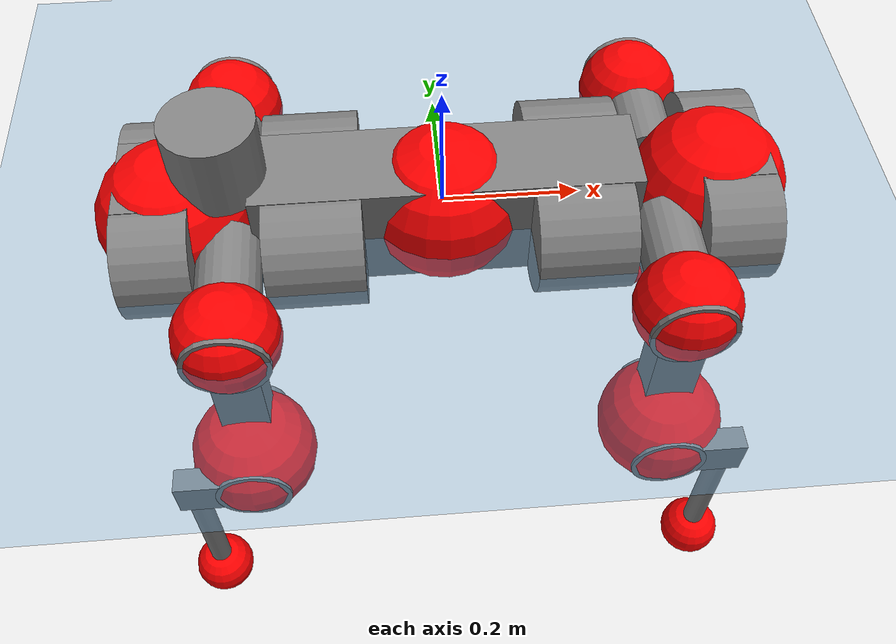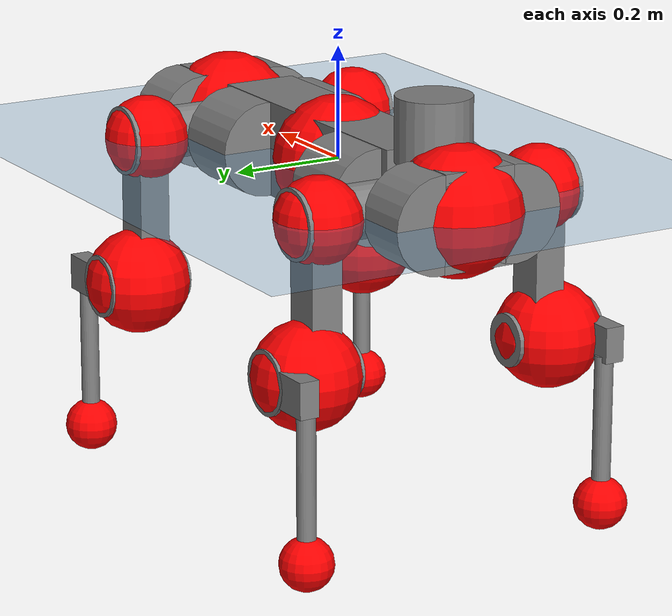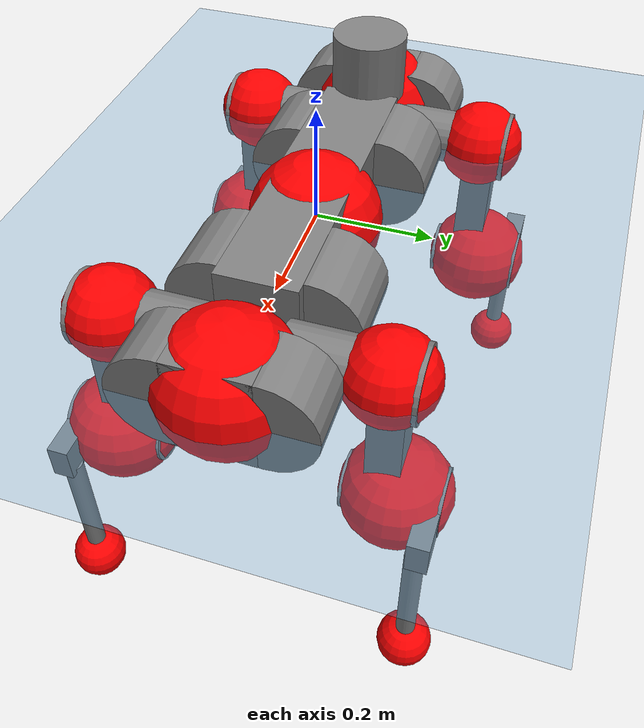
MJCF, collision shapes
<mujoco model="anymal_c">
  <compiler angle="radian" assetdir="assets" balanceinertia="true" inertiafromgeom="false"/>

  <option timestep="0.005" density="1.2" viscosity="2e-05"/>

  <size nkey="1"/>

  <visual>
    <quality shadowsize="8192"/>
    <map shadowclip="0.5"/>
  </visual>

  <default>
    <default class="/">
      <material specular="0" shininess="0.25"/>
      <geom contype="0" conaffinity="0" group="1" solref="-1000 -80"/>
      <site size="0.01 0.005 0.005" group="5"/>
      <general forcelimited="true" forcerange="-80 80" biastype="affine" gainprm="80" biasprm="0 -80 -2"/>
      <default class="anymal_c">
        <joint armature="0.01" damping="0.01" frictionloss="0.1"/>
        <default class="visual">
          <geom type="mesh" group="2"/>
          <default class="visual_zflip"/>
        </default>
        <default class="collision">
          <geom type="cylinder" group="3"/>
          <default class="foot">
            <geom size="0.03 0 0" type="sphere" condim="6" priority="1" friction="0.8 0.02 0.01" solimp="0.015 1 0.03"/>
          </default>
        </default>
      </default>
      <default class="reward_collision_sphere">
        <geom group="5" rgba="1 0 0 1"/>
      </default>
    </default>
  </default>

  <asset>
    <texture type="skybox" colorspace="auto" name="//unnamed_texture_0" builtin="gradient" rgb1="0.95 0.95 0.95" rgb2="0.95 0.95 0.95" width="100" height="600"/>
    <texture type="2d" colorspace="auto" name="texplane" builtin="checker" rgb1="0.345 0.575 0.748" rgb2="0.345 0.575 0.748" markrgb="1 1 1" width="512" height="512"/>
    <texture type="2d" colorspace="linear" name="base" file="base.png"/>
    <texture type="2d" colorspace="linear" name="top_shell" file="top_shell.png"/>
    <texture type="2d" colorspace="linear" name="bottom_shell" file="bottom_shell.png"/>
    <texture type="2d" colorspace="linear" name="remote" file="remote.png"/>
    <texture type="2d" colorspace="linear" name="hatch" file="hatch.png"/>
    <texture type="2d" colorspace="linear" name="handle" file="handle.png"/>
    <texture type="2d" colorspace="linear" name="face" file="face.png"/>
    <texture type="2d" colorspace="linear" name="battery" file="battery.png"/>
    <texture type="2d" colorspace="linear" name="lidar_cage" file="lidar_cage.png"/>
    <texture type="2d" colorspace="linear" name="depth_camera" file="depth_camera.png"/>
    <texture type="2d" colorspace="linear" name="wide_angle_camera" file="wide_angle_camera.png"/>
    <texture type="2d" colorspace="linear" name="lidar" file="lidar.png"/>
    <texture type="2d" colorspace="linear" name="drive" file="drive.png"/>
    <texture type="2d" colorspace="linear" name="hip_l" file="hip_l.png"/>
    <texture type="2d" colorspace="linear" name="shank_l" file="shank_l.png"/>
    <texture type="2d" colorspace="linear" name="foot" file="foot.png"/>
    <texture type="2d" colorspace="linear" name="thigh" file="thigh.png"/>
    <texture type="2d" colorspace="linear" name="shank_r" file="shank_r.png"/>
    <texture type="2d" colorspace="linear" name="hip_r" file="hip_r.png"/>
    <material name="MatPlane" class="/" texture="texplane" texuniform="true" texrepeat="2 2" specular="0.9" shininess="0.5"/>
    <material name="black_plastic" class="/" rgba="0.007 0.007 0.007 1"/>
    <material name="green" class="/" rgba="0.052 0.178 0.033 1"/>
    <material name="red" class="/" rgba="0.178 0.006 0.005 1"/>
    <material name="yellow" class="/" rgba="0.178 0.119 0.006 1"/>
    <material name="lwl" class="/" rgba="0.8 0.8 0.8 1"/>
    <material name="base" class="/" texture="base"/>
    <material name="top_shell" class="/" texture="top_shell"/>
    <material name="bottom_shell" class="/" texture="bottom_shell"/>
    <material name="hip_l" class="/" texture="hip_l"/>
    <material name="thigh" class="/" texture="thigh"/>
    <material name="shank_l" class="/" texture="shank_l"/>
    <material name="foot" class="/" texture="foot"/>
    <material name="hip_r" class="/" texture="hip_r"/>
    <material name="shank" class="/" texture="shank_r"/>
    <material name="hatch" class="/" texture="hatch"/>
    <material name="remote" class="/" texture="remote"/>
    <material name="handle" class="/" texture="handle"/>
    <material name="face" class="/" texture="face"/>
    <material name="depth_camera" class="/" texture="depth_camera"/>
    <material name="wide_angle_camera" class="/" texture="wide_angle_camera"/>
    <material name="battery" class="/" texture="battery"/>
    <material name="lidar_cage" class="/" texture="lidar_cage"/>
    <material name="lidar" class="/" texture="lidar"/>
    <material name="drive" class="/" texture="drive"/>
    <mesh name="base_0" class="/" file="base_0.obj"/>
    <mesh name="base_1" class="/" file="base_1.obj"/>
    <mesh name="base_2" class="/" file="base_2.obj"/>
    <mesh name="base_3" class="/" file="base_3.obj"/>
    <mesh name="base_4" class="/" file="base_4.obj"/>
    <mesh name="base_5" class="/" file="base_5.obj"/>
    <mesh name="top_shell" class="/" file="top_shell.obj"/>
    <mesh name="bottom_shell" class="/" file="bottom_shell.obj"/>
    <mesh name="remote" class="/" file="remote.obj"/>
    <mesh name="handle" class="/" file="handle.obj"/>
    <mesh name="face" class="/" file="face.obj"/>
    <mesh name="wide_angle_camera" class="/" file="wide_angle_camera.obj"/>
    <mesh name="depth_camera" class="/" file="depth_camera.obj"/>
    <mesh name="battery" class="/" file="battery.obj"/>
    <mesh name="lidar_cage" class="/" file="lidar_cage.obj"/>
    <mesh name="lidar" class="/" file="lidar.obj"/>
    <mesh name="drive" class="/" file="drive.obj"/>
    <mesh name="hip_l" class="/" file="hip_l.obj"/>
    <mesh name="thigh" class="/" file="thigh.obj"/>
    <mesh name="shank_l" class="/" file="shank_l.obj"/>
    <mesh name="foot" class="/" file="foot.obj"/>
    <mesh name="hip_r" class="/" file="hip_r.obj"/>
    <mesh name="hatch" class="/" file="hatch.obj"/>
    <mesh name="shank_r" class="/" file="shank_r.obj"/>
  </asset>

  <worldbody>
    <geom name="floor" class="/" size="100 100 0.125" type="plane" group="0" material="MatPlane"/>
    <light name="toplight_shadow" class="/" pos="0 0 5" dir="0.0990148 0.0990148 -0.990148" type="directional" ambient="0.04 0.04 0.04" diffuse="0.55 0.55 0.55" specular="0.12 0.12 0.12"/>
    <light name="toplight_fill" class="/" pos="0 0 5" dir="0.0990148 0.0990148 -0.990148" type="directional" castshadow="false" ambient="0.04 0.04 0.04" diffuse="0.3 0.3 0.3" specular="0.08 0.08 0.08"/>
    <body name="trunk" childclass="anymal_c" pos="0.00318612 -0.00025245 -0.00240098" quat="1 0.000270333 -3.89134e-05 0.000389678">
      <inertial pos="0.00599187 -0.00164171 0.043701" quat="0.508033 0.500375 0.490915 0.50053" mass="16.9755" diaginertia="0.302461 0.827271 0.146975"/>
      <joint name="//unnamed_joint_0" type="free" armature="0" damping="0" frictionloss="0"/>
      <geom name="//unnamed_geom_1" class="visual" material="green" mesh="base_0"/>
      <geom name="//unnamed_geom_2" class="visual" material="yellow" mesh="base_1"/>
      <geom name="//unnamed_geom_3" class="visual" material="red" mesh="base_2"/>
      <geom name="//unnamed_geom_4" class="visual" material="black_plastic" mesh="base_3"/>
      <geom name="//unnamed_geom_5" class="visual" material="lwl" mesh="base_4"/>
      <geom name="//unnamed_geom_6" class="visual" material="base" mesh="base_5"/>
      <geom name="trunk_1" class="collision" size="0.275589 0.0665214 0.0855276" type="box"/>
      <geom name="trunk_2" class="collision" size="0.0855276 0.0688972" pos="0.188431 0.0739032 0" quat="0.707107 0 0.707107 0"/>
      <geom name="trunk_3" class="collision" size="0.0855276 0.0688972" pos="-0.188431 0.0739032 0" quat="0.707107 0 0.707107 0"/>
      <geom name="trunk_4" class="collision" size="0.0855276 0.0688972" pos="0.188431 -0.0739032 0" quat="0.707107 0 0.707107 0"/>
      <geom name="trunk_5" class="collision" size="0.0855276 0.0688972" pos="-0.188431 -0.0739032 0" quat="0.707107 0 0.707107 0"/>
      <geom name="//unnamed_geom_12" class="visual" material="top_shell" mesh="top_shell"/>
      <geom name="//unnamed_geom_13" class="visual" material="bottom_shell" mesh="bottom_shell"/>
      <geom name="//unnamed_geom_14" class="visual" material="remote" mesh="remote"/>
      <geom name="//unnamed_geom_15" class="visual" material="handle" mesh="handle"/>
      <geom name="//unnamed_geom_16" class="visual" pos="0.359102 0 0" quat="1 0 0 0" material="face" mesh="face"/>
      <geom name="trunk_6" class="collision" size="0.0522668 0.0665214 0.0855276" pos="0.406751 0 0" type="box"/>
      <geom name="//unnamed_geom_18" class="collision" size="0.0855276 0.0522668" pos="0.406751 0.0739032 0" quat="0.707107 0 0.707107 0"/>
      <geom name="//unnamed_geom_19" class="collision" size="0.0855276 0.0522668" pos="0.406751 -0.0739032 0" quat="0.707107 0 0.707107 0"/>
      <geom name="//unnamed_geom_20" class="visual" pos="0.399953 0 -0.0275959" quat="0.965926 0 0.258819 0" material="depth_camera" mesh="depth_camera"/>
      <geom name="//unnamed_geom_21" class="visual" pos="0.444438 0 0.0139043" material="wide_angle_camera" mesh="wide_angle_camera"/>
      <geom name="//unnamed_geom_22" class="visual_zflip" pos="-0.359102 0 0" quat="0 0 0 1" material="face" mesh="face"/>
      <geom name="trunk_7" class="collision" size="0.0522668 0.0665214 0.0855276" pos="-0.406751 0 0" quat="0 0 0 1" type="box"/>
      <geom name="//unnamed_geom_24" class="collision" size="0.0855276 0.0522668" pos="-0.406751 -0.0739032 0" quat="0 -0.707107 0 0.707107"/>
      <geom name="//unnamed_geom_25" class="collision" size="0.0855276 0.0522668" pos="-0.406751 0.0739032 0" quat="0 -0.707107 0 0.707107"/>
      <geom name="//unnamed_geom_26" class="visual" pos="-0.399953 0 -0.0275959" quat="0 -0.258819 0 0.965926" material="depth_camera" mesh="depth_camera"/>
      <geom name="//unnamed_geom_27" class="visual_zflip" pos="-0.444438 0 0.0139043" quat="0 0 0 1" material="wide_angle_camera" mesh="wide_angle_camera"/>
      <geom name="//unnamed_geom_28" class="visual" material="battery" mesh="battery"/>
      <geom name="//unnamed_geom_29" class="visual" pos="0 0.0832115 0.0265072" quat="0.683013 -0.183013 0.183013 0.683013" material="depth_camera" mesh="depth_camera"/>
      <geom name="//unnamed_geom_30" class="visual" pos="0 -0.0832115 0.0265072" quat="0.683013 0.183013 0.183013 -0.683013" material="depth_camera" mesh="depth_camera"/>
      <geom name="//unnamed_geom_31" class="visual" pos="-0.315351 0 0.0682674" quat="1 0 0 0" material="lidar_cage" mesh="lidar_cage"/>
      <geom name="trunk_8" class="collision" size="0.0665214 0.0570184" pos="-0.315351 0 0.123996"/>
      <geom name="//unnamed_geom_33" class="visual" pos="-0.315351 7.44141e-05 0.132077" quat="0.707107 0 0 -0.707107" material="lidar" mesh="lidar"/>
      <geom name="//unnamed_geom_34" class="visual" pos="0.259818 0.109754 2.18992e-09" quat="0.258819 0.965926 0 0" material="drive" mesh="drive"/>
      <geom name="//unnamed_geom_35" class="visual" pos="0.259818 -0.109754 -2.18992e-09" quat="0.258819 -0.965926 0 0" material="drive" mesh="drive"/>
      <geom name="//unnamed_geom_36" class="visual" pos="-0.259818 0.109754 -2.18992e-09" quat="0 0 0.965926 -0.258819" material="drive" mesh="drive"/>
      <geom name="//unnamed_geom_37" class="visual" pos="-0.259818 -0.109754 2.18992e-09" quat="0 0 -0.965926 -0.258819" material="drive" mesh="drive"/>
      <geom name="//unnamed_geom_38" class="visual" pos="0.100497 0 0.067803" quat="1 0 0 0" material="hatch" mesh="hatch"/>
      <geom name="//unnamed_geom_39" class="reward_collision_sphere" size="0.114037"/>
      <geom name="//unnamed_geom_40" class="reward_collision_sphere" size="0.114037" pos="0.389858 0 0"/>
      <geom name="//unnamed_geom_41" class="reward_collision_sphere" size="0.114037" pos="-0.389858 0 0"/>
      <site name="imu" pos="0.213426 0.0212695 0.0301344" size="0.00950306"/>
      <camera name="track" pos="0 -2.11152 0" quat="0.707107 0.707107 0 0" mode="trackcom"/>
      <camera name="ego_camera" pos="0.389858 0 -0.0371524" quat="-0.5 -0.5 0.5 0.5"/>
      <body name="LF_HIP" pos="0.258971 0.109044 0.00262052" quat="0.257525 0.966271 0.000513108 -0.000861673">
        <inertial pos="0.0531006 -0.0176259 -0.00917542" quat="-0.127143 0.709327 -0.135433 0.679962" mass="2.2861" diaginertia="0.00272707 0.00651742 0.00226756"/>
        <joint name="LF_HAA" pos="0 0 0" axis="0.999888 -0.0104514 -0.0107043" range="-0.727648 0.522844" armature="0.00931039" damping="0.00296728" frictionloss="0.105803"/>
        <geom name="//unnamed_geom_42" class="visual" pos="0 0.000128823 -2.11591e-05" quat="0.258819 -0.965926 0 0" material="hip_l" mesh="hip_l"/>
        <geom name="//unnamed_geom_43" class="visual" pos="0.0518944 -0.0653298 -0.0367792" quat="0.183013 -0.683013 0.683013 0.183013" material="drive" mesh="drive"/>
        <geom name="//unnamed_geom_44" class="collision" size="0.0475153 0.0665214" pos="0.0518944 -0.0126267 -0.00641342" quat="-0.353553 -0.612372 0.612372 -0.353553"/>
        <body name="LF_THIGH" pos="0.0513251 -0.0743944 -0.0379051" quat="0.183095 -0.683059 0.682958 0.182962">
          <inertial pos="0.0235829 0.000322452 -0.23028" quat="0.993105 -0.00399376 -0.0791874 0.0863452" mass="2.52538" diaginertia="0.0144312 0.0400499 0.00277604"/>
          <joint name="LF_HFE" pos="0 0 0" axis="0.99996 -0.00300514 -0.00843374" range="-3.12084 3.13067" armature="0.00926715" damping="0.022619" frictionloss="0.103947"/>
          <geom name="//unnamed_geom_45" class="visual" pos="-0.00376851 -5.9383e-06 0" quat="0.707107 0 0 -0.707107" material="thigh" mesh="thigh"/>
          <geom name="//unnamed_geom_46" class="collision" size="0.0617699 0.0380123" pos="0.034654 0 0" quat="0.5 0.5 -0.5 -0.5"/>
          <geom name="//unnamed_geom_47" class="collision" size="0.0356365 0.0285092 0.134292" pos="0.0259905 0 -0.131254" quat="0.707107 0 0 -0.707107" type="box"/>
          <geom name="//unnamed_geom_48" class="visual" pos="0.0868949 0 -0.264711" quat="1 0 0 0" material="drive" mesh="drive"/>
          <geom name="//unnamed_geom_49" class="collision" size="0.0475153 0.0665214" pos="0.0262504 0 -0.264711" quat="0.707107 0 0.707107 0"/>
          <geom name="//unnamed_geom_50" class="reward_collision_sphere" size="0.0760245" pos="0.0216588 0 0"/>
          <body name="LF_SHANK" pos="0.0877976 0.00150123 -0.264233" quat="1 -7.79784e-05 0.000240757 0.000225988">
            <inertial pos="0.00593323 -0.0629879 -0.074682" quat="0.992256 -0.119844 -0.00653754 -0.0319825" mass="0.520224" diaginertia="0.00479161 0.012365 0.00076634"/>
            <joint name="LF_KFE" pos="0 0 0" axis="0.999899 0.00928818 0.0107504" range="-3.15697 3.16646" armature="0.00870431" damping="0.00983954" frictionloss="0.0868907"/>
            <geom name="//unnamed_geom_51" class="visual" pos="-0.00122883 -0.00655218 0" quat="0.707107 0 0 -0.707107" material="shank_l" mesh="shank_l"/>
            <geom name="LF_kfe_act" class="collision" size="0.0570184 0.0190061" pos="0.017327 0 0" quat="0.5 0.5 -0.5 -0.5"/>
            <geom name="//unnamed_geom_53" class="collision" size="0.0546417 0.0320728 0.0180558" pos="0.017327 -0.0607052 0" quat="0.5 0.5 -0.5 -0.5" type="box"/>
            <geom name="//unnamed_geom_54" class="visual" pos="0.0113062 -0.0949656 -0.31391" quat="0.382683 0 0 -0.92388" material="foot" mesh="foot"/>
            <geom name="LF_calf" class="collision" size="0.0166304 0.134233" pos="0.0113059 -0.0928541 -0.156955" quat="0.707107 0 0 -0.707107"/>
            <geom name="LF_foot" class="foot" size="0.0337891" pos="0.0113059 -0.0928541 -0.293011" quat="0.707107 0 0 -0.707107"/>
            <geom name="//unnamed_geom_57" class="reward_collision_sphere" size="0.0950306" pos="-0.0433175 0 0"/>
            <geom name="//unnamed_geom_58" class="reward_collision_sphere" size="0.0475153" pos="0.0113059 -0.0928541 -0.293011"/>
            <site name="LF_foot" class="foot" pos="0.0113059 -0.0928541 -0.293011" quat="0.707107 0 0 -0.707107" size="0.00950306"/>
          </body>
        </body>
      </body>
      <body name="RF_HIP" pos="0.260527 -0.111712 0.000219767" quat="0.258893 -0.965905 0.00105411 6.25959e-05">
        <inertial pos="0.0484299 0.0192702 -0.00816455" quat="0.135282 0.679226 0.12806 0.709896" mass="2.24501" diaginertia="0.00280274 0.00628505 0.00225844"/>
        <joint name="RF_HAA" pos="0 0 0" axis="0.999999 -0.00100101 0.000353738" range="-0.463938 0.707552" armature="0.0111586" damping="0.0101137" frictionloss="0.0790508"/>
        <geom name="//unnamed_geom_59" class="visual" pos="0 -0.000128822 -2.11591e-05" quat="0.258819 0.965926 0 0" material="hip_r" mesh="hip_r"/>
        <geom name="//unnamed_geom_60" class="visual" pos="0.0518944 0.0653298 -0.0367792" quat="0.183013 0.683013 0.683013 -0.183013" material="drive" mesh="drive"/>
        <geom name="//unnamed_geom_61" class="collision" size="0.0475153 0.0665214" pos="0.0518944 0.0126267 -0.00641342" quat="-0.353553 0.612372 0.612372 0.353553"/>
        <body name="RF_THIGH" pos="0.0540734 0.0749888 -0.0410358" quat="0.183004 0.683863 0.682411 -0.182087">
          <inertial pos="0.0266927 0.00380453 -0.230703" quat="0.992445 -0.00452649 -0.0883413 0.085018" mass="2.68482" diaginertia="0.0141478 0.0369393 0.00283246"/>
          <joint name="RF_HFE" pos="0 0 0" axis="0.999882 -0.0150539 -0.0029489" stiffness="0.00568614" range="-3.19557 3.09194" armature="0.00944677" damping="0.0078106" frictionloss="0.105724"/>
          <geom name="//unnamed_geom_62" class="visual" pos="-0.00376851 -5.9383e-06 0" quat="0.707107 0 0 -0.707107" material="thigh" mesh="thigh"/>
          <geom name="//unnamed_geom_63" class="collision" size="0.0617699 0.0380123" pos="0.034654 0 0" quat="0.5 0.5 0.5 0.5"/>
          <geom name="//unnamed_geom_64" class="collision" size="0.0356365 0.0285092 0.134292" pos="0.0259905 0 -0.131254" quat="0.707107 0 0 0.707107" type="box"/>
          <geom name="//unnamed_geom_65" class="visual" pos="0.0868949 0 -0.264711" quat="1 0 0 0" material="drive" mesh="drive"/>
          <geom name="//unnamed_geom_66" class="collision" size="0.0475153 0.0665214" pos="0.0262504 0 -0.264711" quat="0.707107 0 0.707107 0"/>
          <geom name="//unnamed_geom_67" class="reward_collision_sphere" size="0.0760245" pos="0.0216588 0 0"/>
          <body name="RF_SHANK" pos="0.0877127 0.000481728 -0.265641" quat="1 -8.55212e-05 9.20134e-06 -0.000400039">
            <inertial pos="0.00655094 0.0646912 -0.0772753" quat="0.992691 0.119333 -0.00299126 0.0177351" mass="0.513859" diaginertia="0.00479997 0.0119445 0.000762997"/>
            <joint name="RF_KFE" pos="0 0 0" axis="0.999982 -0.00525235 0.00277149" range="-3.15784 3.10991" armature="0.00974575" damping="0.015244" frictionloss="0.107066"/>
            <geom name="//unnamed_geom_68" class="visual" pos="-0.00122882 0.00655217 0" quat="0.707107 0 0 0.707107" material="shank" mesh="shank_r"/>
            <geom name="RF_kfe_act" class="collision" size="0.0570184 0.0190061" pos="0.017327 0 0" quat="0.5 0.5 0.5 0.5"/>
            <geom name="//unnamed_geom_70" class="collision" size="0.0546417 0.0320728 0.0180558" pos="0.017327 0.0607052 0" quat="0.5 0.5 0.5 0.5" type="box"/>
            <geom name="//unnamed_geom_71" class="visual" pos="0.0113056 0.0949656 -0.31391" quat="0.382683 0 0 0.92388" material="foot" mesh="foot"/>
            <geom name="RF_calf" class="collision" size="0.0166304 0.134233" pos="0.0113059 0.0928541 -0.156955" quat="0.707107 0 0 0.707107"/>
            <geom name="RF_foot" class="foot" size="0.0302354" pos="0.0113059 0.0928541 -0.293011" quat="0.707107 0 0 0.707107"/>
            <geom name="//unnamed_geom_74" class="reward_collision_sphere" size="0.0950306" pos="-0.0433175 0 0"/>
            <geom name="//unnamed_geom_75" class="reward_collision_sphere" size="0.0475153" pos="0.0113059 0.0928541 -0.293011"/>
            <site name="RF_foot" class="foot" pos="0.0113059 0.0928541 -0.293011" quat="0.707107 0 0 0.707107" size="0.00950306"/>
          </body>
        </body>
      </body>
      <body name="LH_HIP" pos="-0.260529 0.112976 0.0013261" quat="-0.0021013 -0.00103533 0.965819 -0.259206">
        <inertial pos="0.0459381 0.0134166 -0.00673886" quat="0.134155 0.679133 0.128404 0.710136" mass="2.46214" diaginertia="0.0028567 0.00645537 0.00220524"/>
        <joint name="LH_HAA" pos="0 0 0" axis="0.99996 0.00512698 0.00735112" stiffness="0.00060687" range="-0.539563 0.758814" armature="0.00955177" damping="0.0105124" frictionloss="0.10661"/>
        <geom name="//unnamed_geom_76" class="visual" pos="0 -0.000128822 -2.11591e-05" quat="-0.258819 -0.965926 0 0" material="hip_r" mesh="hip_r"/>
        <geom name="//unnamed_geom_77" class="visual" pos="0.0518944 0.0653298 -0.0367792" quat="0.183013 0.683013 0.683013 -0.183013" material="drive" mesh="drive"/>
        <geom name="//unnamed_geom_78" class="collision" size="0.0475153 0.0665214" pos="0.0518944 0.0126267 -0.00641342" quat="-0.353553 0.612372 0.612372 0.353553"/>
        <body name="LH_THIGH" pos="0.0543713 0.0789532 -0.0392786" quat="0.183323 0.68382 0.682372 -0.182077">
          <inertial pos="0.0274316 -0.00220636 -0.23005" quat="0.992538 0.0035148 -0.0829363 0.0893206" mass="2.68603" diaginertia="0.0152858 0.0396367 0.00299384"/>
          <joint name="LH_HFE" pos="0 0 0" axis="0.999998 -0.00182279 0.000296774" range="-3.18076 3.1569" armature="0.00926124" damping="0.0221372" frictionloss="0.0830583"/>
          <geom name="//unnamed_geom_79" class="visual" pos="-0.00376851 -5.9383e-06 0" quat="0.707107 0 0 -0.707107" material="thigh" mesh="thigh"/>
          <geom name="//unnamed_geom_80" class="collision" size="0.0617699 0.0380123" pos="0.034654 0 0" quat="0.5 0.5 -0.5 -0.5"/>
          <geom name="//unnamed_geom_81" class="collision" size="0.0356365 0.0285092 0.134292" pos="0.0259905 0 -0.131254" quat="0.707107 0 0 -0.707107" type="box"/>
          <geom name="//unnamed_geom_82" class="visual" pos="0.0868949 0 -0.264711" quat="1 0 0 0" material="drive" mesh="drive"/>
          <geom name="//unnamed_geom_83" class="collision" size="0.0475153 0.0665214" pos="0.0262504 0 -0.264711" quat="0.707107 0 0.707107 0"/>
          <geom name="//unnamed_geom_84" class="reward_collision_sphere" size="0.0760245" pos="0.0216588 0 0"/>
          <body name="LH_SHANK" pos="0.0898388 0.000421197 -0.263257" quat="1 -0.000332233 -0.000375271 4.39051e-05">
            <inertial pos="0.005024 0.0647291 -0.0735392" quat="0.992915 0.116043 -0.000942803 0.0255541" mass="0.503977" diaginertia="0.00495111 0.0119552 0.000762574"/>
            <joint name="LH_KFE" pos="0 0 0" axis="0.999955 -0.00932595 -0.00199059" range="-3.19722 3.14509" armature="0.00862135" damping="0.0196652" frictionloss="0.0973904"/>
            <geom name="//unnamed_geom_85" class="visual" pos="-0.00122882 0.00655217 0" quat="-0.707107 0 0 -0.707107" material="shank" mesh="shank_r"/>
            <geom name="LH_kfe_act" class="collision" size="0.0570184 0.0190061" pos="0.017327 0 0" quat="0.5 0.5 -0.5 -0.5"/>
            <geom name="//unnamed_geom_87" class="collision" size="0.0546417 0.0320728 0.0180558" pos="0.017327 0.0607052 0" quat="0.5 0.5 -0.5 -0.5" type="box"/>
            <geom name="//unnamed_geom_88" class="visual" pos="0.0113056 0.0949656 -0.31391" quat="-0.382683 0 0 -0.92388" material="foot" mesh="foot"/>
            <geom name="LH_calf" class="collision" size="0.0166304 0.134233" pos="0.0113059 0.0928541 -0.156955" quat="0.707107 0 0 -0.707107"/>
            <geom name="LH_foot" class="foot" size="0.0293066" pos="0.0113059 0.0928541 -0.293011" quat="0.707107 0 0 -0.707107"/>
            <geom name="//unnamed_geom_91" class="reward_collision_sphere" size="0.0950306" pos="-0.0433175 0 0"/>
            <geom name="//unnamed_geom_92" class="reward_collision_sphere" size="0.0475153" pos="0.0113059 0.0928541 -0.293011"/>
            <site name="LH_foot" class="foot" pos="0.0113059 0.0928541 -0.293011" quat="0.707107 0 0 -0.707107" size="0.00950306"/>
          </body>
        </body>
      </body>
      <body name="RH_HIP" pos="-0.259031 -0.106573 -0.00118012" quat="-0.000230378 0.000166997 -0.965914 -0.258863">
        <inertial pos="0.0489618 -0.0169242 -0.00812468" quat="-0.138027 0.708695 -0.140349 0.677497" mass="2.4157" diaginertia="0.00292905 0.00657652 0.00222567"/>
        <joint name="RH_HAA" pos="0 0 0" axis="0.999972 0.00710556 0.00223616" range="-0.685256 0.473315" armature="0.00794039" damping="0" frictionloss="0.103119"/>
        <geom name="//unnamed_geom_93" class="visual" pos="0 0.000128823 -2.11591e-05" quat="-0.258819 0.965926 0 0" material="hip_l" mesh="hip_l"/>
        <geom name="//unnamed_geom_94" class="visual" pos="0.0518944 -0.0653298 -0.0367792" quat="-0.183013 0.683013 -0.683013 -0.183013" material="drive" mesh="drive"/>
        <geom name="//unnamed_geom_95" class="collision" size="0.0475153 0.0665214" pos="0.0518944 -0.0126267 -0.00641342" quat="0.353553 0.612372 -0.612372 0.353553"/>
        <body name="RH_THIGH" pos="0.0522517 -0.0783877 -0.0372726" quat="-0.181876 0.683298 -0.683183 -0.182441">
          <inertial pos="0.0262653 -0.00194085 -0.227626" quat="0.993555 -0.00341463 -0.0781241 0.0820627" mass="2.49152" diaginertia="0.0138963 0.0383939 0.00288311"/>
          <joint name="RH_HFE" pos="0 0 0" axis="0.999927 -0.00934429 0.00771928" range="-3.09366 3.16262" armature="0.010169" damping="0" frictionloss="0.0829339"/>
          <geom name="//unnamed_geom_96" class="visual" pos="-0.00376851 -5.9383e-06 0" quat="0.707107 0 0 -0.707107" material="thigh" mesh="thigh"/>
          <geom name="//unnamed_geom_97" class="collision" size="0.0617699 0.0380123" pos="0.034654 0 0" quat="0.5 0.5 0.5 0.5"/>
          <geom name="//unnamed_geom_98" class="collision" size="0.0356365 0.0285092 0.134292" pos="0.0259905 0 -0.131254" quat="0.707107 0 0 0.707107" type="box"/>
          <geom name="//unnamed_geom_99" class="visual" pos="0.0868949 0 -0.264711" quat="1 0 0 0" material="drive" mesh="drive"/>
          <geom name="//unnamed_geom_100" class="collision" size="0.0475153 0.0665214" pos="0.0262504 0 -0.264711" quat="0.707107 0 0.707107 0"/>
          <geom name="//unnamed_geom_101" class="reward_collision_sphere" size="0.0760245" pos="0.0216588 0 0"/>
          <body name="RH_SHANK" pos="0.0916132 -7.39539e-05 -0.265423" quat="1 -0.000613216 0.000537968 -0.000535748">
            <inertial pos="0.000388273 -0.0642866 -0.0734896" quat="0.991604 -0.127385 -0.000353679 -0.0222555" mass="0.500862" diaginertia="0.00527599 0.0126504 0.000813376"/>
            <joint name="RH_KFE" pos="0 0 0" axis="0.999747 0.000643076 -0.0224908" range="-3.13782 3.0469" armature="0.00979869" damping="0.0161733" frictionloss="0.107255"/>
            <geom name="//unnamed_geom_102" class="visual" pos="-0.00122883 -0.00655218 0" quat="0.707107 0 0 -0.707107" material="shank_l" mesh="shank_l"/>
            <geom name="RH_kfe_act" class="collision" size="0.0570184 0.0190061" pos="0.017327 0 0" quat="0.5 0.5 0.5 0.5"/>
            <geom name="//unnamed_geom_104" class="collision" size="0.0546417 0.0320728 0.0180558" pos="0.017327 -0.0607052 0" quat="0.5 0.5 0.5 0.5" type="box"/>
            <geom name="//unnamed_geom_105" class="visual" pos="0.0113062 -0.0949656 -0.31391" quat="0.382683 0 0 -0.92388" material="foot" mesh="foot"/>
            <geom name="RH_calf" class="collision" size="0.0166304 0.134233" pos="0.0113059 -0.0928541 -0.156955" quat="0.707107 0 0 0.707107"/>
            <geom name="RH_foot" class="foot" size="0.0244472" pos="0.0113059 -0.0928541 -0.293011" quat="0.707107 0 0 0.707107"/>
            <geom name="//unnamed_geom_108" class="reward_collision_sphere" size="0.0950306" pos="-0.0433175 0 0"/>
            <geom name="//unnamed_geom_109" class="reward_collision_sphere" size="0.0475153" pos="0.0113059 -0.0928541 -0.293011"/>
            <site name="RH_foot" class="foot" pos="0.0113059 -0.0928541 -0.293011" quat="0.707107 0 0 0.707107" size="0.00950306"/>
          </body>
        </body>
      </body>
    </body>
  </worldbody>

  <contact>
    <pair class="/" geom1="floor" geom2="LF_foot" name="//unnamed_contact_0"/>
    <pair class="/" geom1="floor" geom2="RF_foot" name="//unnamed_contact_1"/>
    <pair class="/" geom1="floor" geom2="LH_foot" name="//unnamed_contact_2"/>
    <pair class="/" geom1="floor" geom2="RH_foot" name="//unnamed_contact_3"/>
  </contact>

  <actuator>
    <general name="LF_HAA" class="/" joint="LF_HAA" forcerange="-77.7935 77.7935" gainprm="76.7881" biasprm="0 -76.7881 -2.14503"/>
    <general name="LF_HFE" class="/" joint="LF_HFE" forcerange="-71.1796 71.1796" gainprm="76.7881" biasprm="0 -76.7881 -2.14503"/>
    <general name="LF_KFE" class="/" joint="LF_KFE" forcerange="-76.4968 76.4968" gainprm="76.7881" biasprm="0 -76.7881 -2.14503"/>
    <general name="RF_HAA" class="/" joint="RF_HAA" forcerange="-64.39 64.39" gainprm="76.7881" biasprm="0 -76.7881 -2.14503"/>
    <general name="RF_HFE" class="/" joint="RF_HFE" forcerange="-74.9637 74.9637" gainprm="76.7881" biasprm="0 -76.7881 -2.14503"/>
    <general name="RF_KFE" class="/" joint="RF_KFE" forcerange="-76.7084 76.7084" gainprm="76.7881" biasprm="0 -76.7881 -2.14503"/>
    <general name="LH_HAA" class="/" joint="LH_HAA" forcerange="-74.391 74.391" gainprm="76.7881" biasprm="0 -76.7881 -2.14503"/>
    <general name="LH_HFE" class="/" joint="LH_HFE" forcerange="-74.0053 74.0053" gainprm="76.7881" biasprm="0 -76.7881 -2.14503"/>
    <general name="LH_KFE" class="/" joint="LH_KFE" forcerange="-79.0382 79.0382" gainprm="76.7881" biasprm="0 -76.7881 -2.14503"/>
    <general name="RH_HAA" class="/" joint="RH_HAA" forcerange="-81.9861 81.9861" gainprm="76.7881" biasprm="0 -76.7881 -2.14503"/>
    <general name="RH_HFE" class="/" joint="RH_HFE" forcerange="-69.4738 69.4738" gainprm="76.7881" biasprm="0 -76.7881 -2.14503"/>
    <general name="RH_KFE" class="/" joint="RH_KFE" forcerange="-69.435 69.435" gainprm="76.7881" biasprm="0 -76.7881 -2.14503"/>
  </actuator>

  <sensor>
    <gyro site="imu" name="imu_angular_velocity"/>
    <velocimeter site="imu" name="imu_linear_velocity"/>
    <framelinvel objtype="site" objname="LF_foot" name="LF_foot_global_linear_velocity"/>
    <framelinvel objtype="site" objname="RF_foot" name="RF_foot_global_linear_velocity"/>
    <framelinvel objtype="site" objname="LH_foot" name="LH_foot_global_linear_velocity"/>
    <framelinvel objtype="site" objname="RH_foot" name="RH_foot_global_linear_velocity"/>
  </sensor>

  <keyframe>
    <key name="home" qpos="0 0 0.55 1 0 0 0 0 0.4 -0.8 0 -0.4 0.8 0 -0.4 0.8 0 0.4 -0.8"/>
  </keyframe>
</mujoco>
